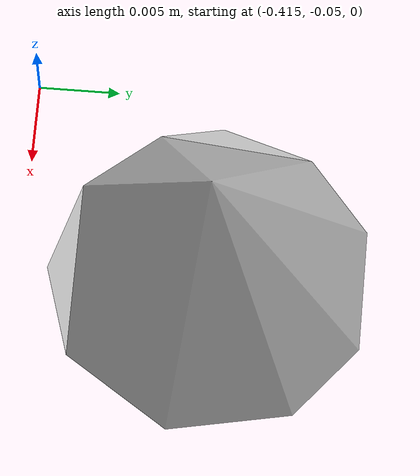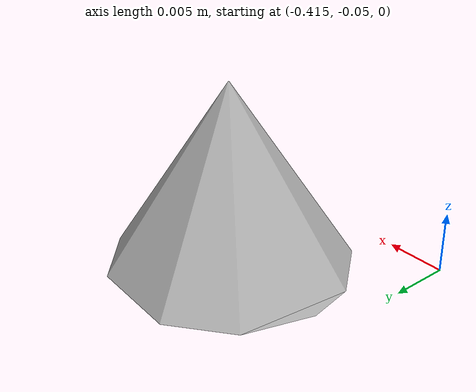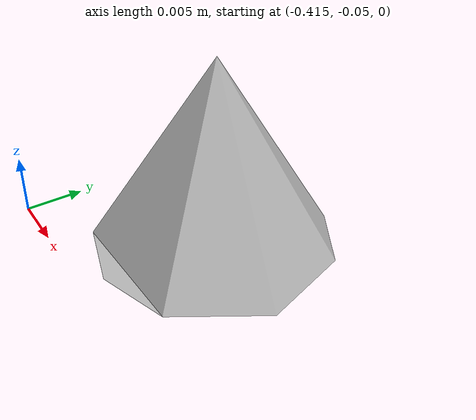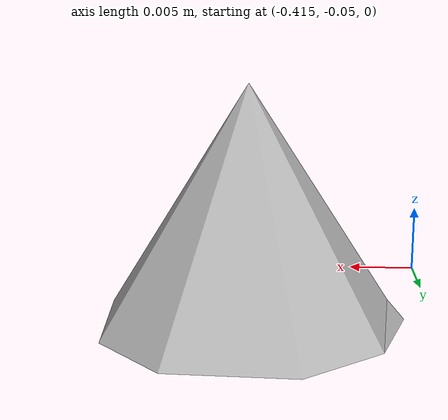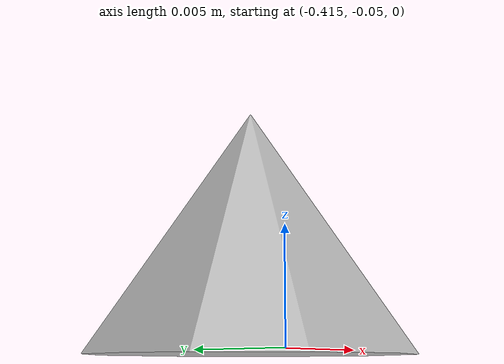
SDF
<?xml version="1.0" ?>
<sdf version="1.5">
  <model name="hard_obstacle">
    <link name="link">
      <pose>0 0 0 0 0 0</pose>
      <collision name="collision">
        <geometry>
          <mesh>
            <uri>model://hard_obstacle/meshes/model.dae</uri>
          </mesh>
        </geometry>
      </collision>
      <visual name="visual">
        <geometry>
          <mesh>
            <uri>model://hard_obstacle/meshes/model.dae</uri>
          </mesh>
        </geometry>
      </visual>
    </link>
    <static>1</static>
  </model>
</sdf>
